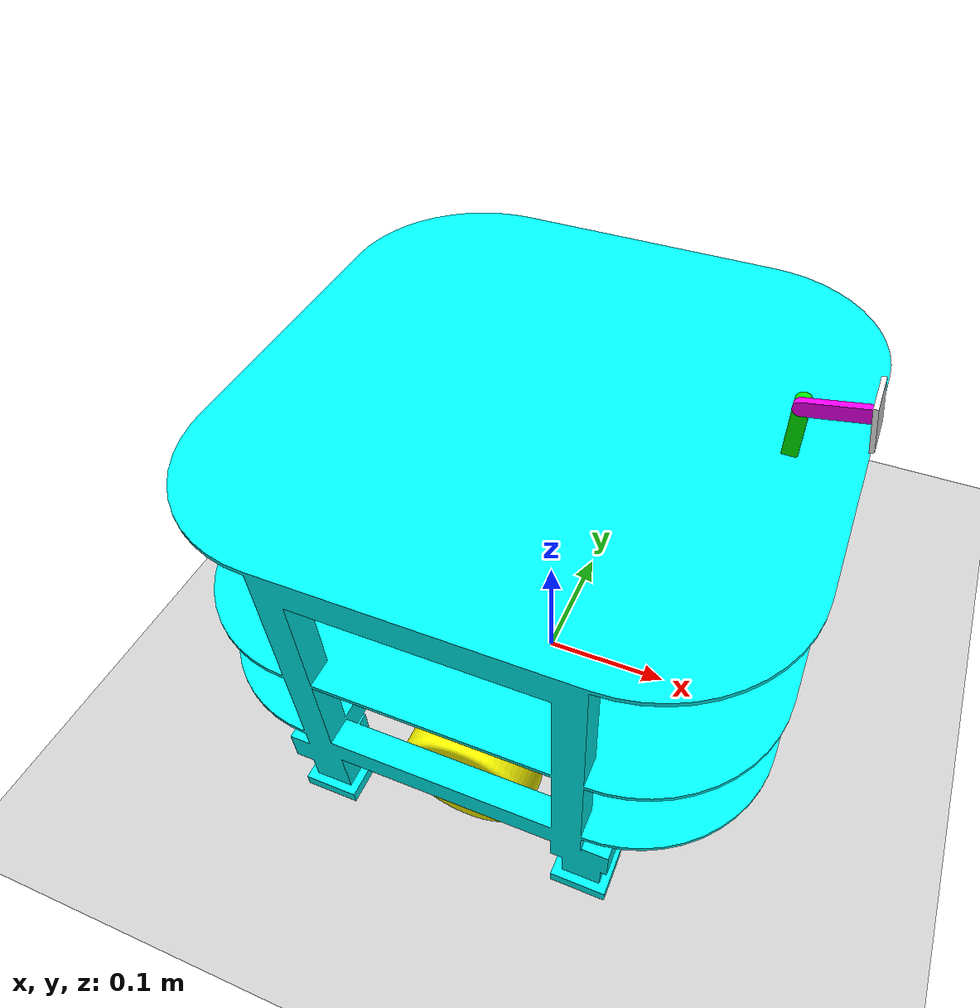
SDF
<?xml version="1.0"?>
<sdf version="1.6">
  <world name="default">

    <include>
      <uri>model://ground_plane</uri>
    </include>

    <include>
      <uri>model://sun</uri>
    </include>

    <scene>
      <shadows>false</shadows>
    </scene>

    <gui fullscreen='0'>
      <camera name='user_camera'>
        <pose frame=''>0.319654 -0.235002 9.29441 0 1.5138 0.009599</pose>
        <view_controller>orbit</view_controller>
        <projection_type>perspective</projection_type>
      </camera>
    </gui>

    <physics type="ode">
      <real_time_update_rate>1000.0</real_time_update_rate>
      <max_step_size>0.001</max_step_size>
      <real_time_factor>1</real_time_factor>
      <ode>
        <solver>
          <type>quick</type>
          <iters>150</iters>
          <precon_iters>0</precon_iters>
          <sor>1.400000</sor>
          <use_dynamic_moi_rescaling>1</use_dynamic_moi_rescaling>
        </solver>
        <constraints>
          <cfm>0.00001</cfm>
          <erp>0.2</erp>
          <contact_max_correcting_vel>2000.000000</contact_max_correcting_vel>
          <contact_surface_layer>0.01000</contact_surface_layer>
        </constraints>
      </ode>
    </physics>

    <include>
      <uri>model://toto2</uri>
    </include>

  </world>
</sdf>

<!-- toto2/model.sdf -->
<sdf version="1.5">
  <model name="toto2">
    <static>false</static>

    <!-- **************************** BASE_FOOTPRINT ********************************* -->

    <link name="base_footprint"/>

    <!-- **************************** BASE_LINK ********************************* -->

    <link name="base_link">
      <inertial>
        <pose>0 0.002513049838439521 0.1635865428520959 0 0 0</pose>
        <inertia>
          <ixx>0.380455</ixx>
          <iyy>0.569614</iyy>
          <izz>0.629258</izz>
          <ixy>0.0</ixy>
          <iyz>0.004146</iyz>
          <ixz>0.0</ixz>
        </inertia>
        <mass>7.0</mass>
      </inertial>

      <visual name="base_visual">
        <pose> 0 0 0 0 0 -1.57079633</pose>
        <geometry>
          <mesh>
            <uri>model://toto2/meshes/base_link.stl</uri>
            <scale>0.001 0.001 0.001</scale>
          </mesh>
        </geometry>
        <material>
          <ambient>0.0 1.0 1.0 1.0</ambient>
          <diffuse>0.0 1.0 1.0 1.0</diffuse>
          <specular>0.0 0.0 0.0 1.0</specular>
          <emissive>0.0 0.0 0.0 1.0</emissive>
        </material>
      </visual>

      <collision name="base_collision">
        <pose>0 0 0.001 0 0 -1.57079633</pose>
        <geometry>
          <mesh>
            <uri>model://toto2/meshes/base_link.stl</uri>
            <scale>0.001 0.001 0.001</scale>
          </mesh>
        </geometry>

        <surface>
          <!-- Define the friction properties -->
          <friction>
            <ode>
              <mu>0.001</mu>           <!-- Coefficient of friction -->
              <mu2>0.001</mu2>         <!-- Second coefficient of friction -->
              <fdir1>1 0 0</fdir1>   <!-- Direction of the first friction axis -->
              <slip1>0.0</slip1>     <!-- Slip along the first friction axis -->
              <slip2>0.0</slip2>     <!-- Slip along the second friction axis -->
            </ode>
          </friction>
        </surface>
      </collision>
    </link>

    <!-- **************************** LIDAR ********************************* -->

    <link name="lidar_1">
      <inertial>
        <pose>2.2068762530809514e-10 0.08500000036781817 -0.07958250099962488 0 0 0</pose>
        <inertia>
          <ixx>0.000336</ixx>
          <iyy>0.000279</iyy>
          <izz>0.000513</izz>
          <ixy>0.0</ixy>
          <iyz>-0.0</iyz>
          <ixz>-0.</ixz>
        </inertia>
        <mass>0.2</mass>
      </inertial>

      <visual name="lidar_visual">
        <pose>0.0 0.0 -0.0 0 0 -1.57079633</pose>
        <geometry>
          <mesh>
            <uri>model://toto2/meshes/lidar_1.stl</uri>
            <scale>0.001 0.001 0.001</scale>
          </mesh>
        </geometry>
        <material>
          <ambient>1.0 0.0 0.0 1.0</ambient>
          <diffuse>1.0 0.0 0.0 1.0</diffuse>
          <specular>0.0 0.0 0.0 1.0</specular>
          <emissive>0.0 0.0 0.0 1.0</emissive>
        </material>
      </visual>

      <collision name="lidar_collision">
        <pose>0.0 -0.0 -0.0 0 0 -1.57079633</pose>
        <geometry>
          <mesh>
            <uri>model://toto2/meshes/lidar_1.stl</uri>
            <scale>0.001 0.001 0.001</scale>
          </mesh>
        </geometry>
      </collision>

      <sensor name="hls_lfcd_lds" type="ray">
        <pose>0.0 -0.0 0.21 0 0 0</pose>
        <always_on>true</always_on>
        <visualize>false</visualize>
        <update_rate>5</update_rate>
        <ray>
          <scan>
            <horizontal>
              <samples>360</samples>
              <resolution>1.00000</resolution>
              <min_angle>0.000000</min_angle>
              <max_angle>6.280000</max_angle>
            </horizontal>
          </scan>
          <range>
            <min>0.250000</min>
            <max>8</max>
            <resolution>0.015000</resolution>
          </range>
          <noise>
            <type>gaussian</type>
            <mean>0.0</mean>
            <stddev>0.01</stddev>
          </noise>
        </ray>
        <plugin name="toto2_scan" filename="libgazebo_ros_ray_sensor.so">
          <ros>
            <remapping>~/out:=scan</remapping>
          </ros>
          <output_type>sensor_msgs/LaserScan</output_type>
          <frame_name>lidar_1</frame_name>
        </plugin>
      </sensor>
    </link>

    <!-- **************************** IMU ********************************* -->

    <link name="imu_link">
      <sensor name="toto2_imu" type="imu">
        <always_on>true</always_on>
        <update_rate>200</update_rate>
        <imu>
          <angular_velocity>
            <x>
              <noise type="gaussian">
                <mean>0.0</mean>
                <stddev>2e-4</stddev>
              </noise>
            </x>
            <y>
              <noise type="gaussian">
                <mean>0.0</mean>
                <stddev>2e-4</stddev>
              </noise>
            </y>
            <z>
              <noise type="gaussian">
                <mean>0.0</mean>
                <stddev>2e-4</stddev>
              </noise>
            </z>
          </angular_velocity>
          <linear_acceleration>
            <x>
              <noise type="gaussian">
                <mean>0.0</mean>
                <stddev>1.7e-2</stddev>
              </noise>
            </x>
            <y>
              <noise type="gaussian">
                <mean>0.0</mean>
                <stddev>1.7e-2</stddev>
              </noise>
            </y>
            <z>
              <noise type="gaussian">
                <mean>0.0</mean>
                <stddev>1.7e-2</stddev>
              </noise>
            </z>
          </linear_acceleration>
        </imu>
        <plugin name="toto2_imu" filename="libgazebo_ros_imu_sensor.so">
          <ros>
            <remapping>~/out:=imu</remapping>
          </ros>
        </plugin>
      </sensor>
    </link>

    <!-- **************************** CAMERA ********************************* -->

    <link name="camera_link1_1">
      <visual name="left_wheel_visual">
        <pose>0.0 0.0 0.0 0 0 -1.57079633</pose>
        <geometry>
          <mesh>
            <uri>model://toto2/meshes/camera_link1_1.stl</uri>
            <scale>0.001 0.001 0.001</scale>
          </mesh>
        </geometry>
        <material>
          <ambient>0.0 1.0 0.0 1.0</ambient>
          <diffuse>0.0 1.0 0.0 1.0</diffuse>
          <specular>0.0 0.0 0.0 1.0</specular>
          <emissive>0.0 0.0 0.0 1.0</emissive>
        </material>
      </visual>
    </link>

    <link name="camera_link2_1">
      <visual name="left_wheel_visual">
        <pose>0.0 0.0 0.0 0 0 -1.57079633</pose>
        <geometry>
          <mesh>
            <uri>model://toto2/meshes/camera_link2_1.stl</uri>
            <scale>0.001 0.001 0.001</scale>
          </mesh>
        </geometry>
        <material>
          <ambient>1.0 0.0 1.0 1.0</ambient>
          <diffuse>1.0 0.0 1.0 1.0</diffuse>
          <specular>0.0 0.0 0.0 1.0</specular>
          <emissive>0.0 0.0 0.0 1.0</emissive>
        </material>
      </visual>
    </link>

    <link name="camera_1">
      <visual name="left_wheel_visual">
        <pose>0.0 0.0 0.0 0 0 -1.57079633</pose>
        <geometry>
          <mesh>
            <uri>model://toto2/meshes/camera_1.stl</uri>
            <scale>0.001 0.001 0.001</scale>
          </mesh>
        </geometry>
        <material>
          <ambient>1.0 1.0 1.0 1.0</ambient>
          <diffuse>1.0 1.0 1.0 1.0</diffuse>
          <specular>0.0 0.0 0.0 1.0</specular>
          <emissive>0.0 0.0 0.0 1.0</emissive>
        </material>
      </visual>

      <sensor name="camera" type="camera">
        <pose>0.21 -0.0 0.3365 0 0 0</pose>
        <always_on>true</always_on>
        <visualize>false</visualize>
        <update_rate>30</update_rate>
        <camera name="picam">
          <horizontal_fov>1.085595</horizontal_fov>
          <image>
            <width>640</width>
            <height>480</height>
            <format>R8G8B8</format>
          </image>
          <clip>
            <near>0.03</near>
            <far>100</far>
          </clip>
          <noise>
            <type>gaussian</type>
            <mean>0.0</mean>
            <stddev>0.007</stddev>
          </noise>
        </camera>
        <plugin name="camera_driver" filename="libgazebo_ros_camera.so">
          <ros>
            <namespace>test_cam</namespace>
            <remapping>image_raw:=image_demo</remapping>
            <remapping>camera_info:=camera_info_demo</remapping>
          </ros>
          <frame_name>camera_1</frame_name>
        </plugin>
      </sensor>
    </link>

    <!-- **************************** RIGHT_WHEEL ********************************* -->

    <link name="right_wheel_1">
      <inertial>
        <pose>0.03541204935975309 -2.4243289958354717e-14 -9.020562075079397e-17 0 0 0</pose>
        <inertia>
          <ixx>0.002407</ixx>
          <iyy>0.001396</iyy>
          <izz>0.001396</izz>
          <ixy>0.0</ixy>
          <iyz>0.0</iyz>
          <ixz>0.0</ixz>
        </inertia>
        <mass>1</mass>
      </inertial>

      <visual name="right_wheel_visual">
        <pose>-0.0 0.0 -0.0 0 0 -1.57079633</pose>
        <geometry>
          <mesh>
            <uri>model://toto2/meshes/right_wheel_1.stl</uri>
            <scale>0.001 0.001 0.001</scale>
          </mesh>
        </geometry>
        <material>
          <ambient>1.0 1.0 0.0 1.0</ambient>
          <diffuse>1.0 1.0 0.0 1.0</diffuse>
          <specular>0.0 0.0 0.0 1.0</specular>
          <emissive>0.0 0.0 0.0 1.0</emissive>
        </material>
      </visual>

      <collision name="right_wheel_collision">
        <pose>-0.0 0.0 -0.0 0 0 -1.57079633</pose>
        <geometry>
          <mesh>
            <uri>model://toto2/meshes/right_wheel_1.stl</uri>
            <scale>0.001 0.001 0.001</scale>
          </mesh>
        </geometry>

        <surface>
          <!-- Define the friction properties -->
          <friction>
            <ode>
              <mu>10000</mu>           <!-- Coefficient of friction -->
              <mu2>1000000</mu2>         <!-- Second coefficient of friction -->
              <fdir1>1 0 0</fdir1>   <!-- Direction of the first friction axis -->
              <slip1>0.0</slip1>     <!-- Slip along the first friction axis -->
              <slip2>0.0</slip2>     <!-- Slip along the second friction axis -->
            </ode>
          </friction>
        </surface>
      </collision>
    </link>

    <!-- **************************** LEFT_WHEEL ********************************* -->

    <link name="left_wheel_1">
      <inertial>
        <pose>-0.03541204935975312 4.3327407697699233e-14 -6.245004513516506e-17 0 0 0</pose>
        <inertia>
          <ixx>0.002407</ixx>
          <iyy>0.001396</iyy>
          <izz>0.001396</izz>
          <ixy>0.0</ixy>
          <iyz>0.0</iyz>
          <ixz>0.0</ixz>
        </inertia>
        <mass>1</mass>
      </inertial>

      <visual name="left_wheel_visual">
        <pose>0.0 0.0 0.0 0 0 -1.57079633</pose>
        <geometry>
          <mesh>
            <uri>model://toto2/meshes/left_wheel_1.stl</uri>
            <scale>0.001 0.001 0.001</scale>
          </mesh>
        </geometry>
        <material>
          <ambient>1.0 1.0 0.0 1.0</ambient>
          <diffuse>1.0 1.0 0.0 1.0</diffuse>
          <specular>0.0 0.0 0.0 1.0</specular>
          <emissive>0.0 0.0 0.0 1.0</emissive>
        </material>
      </visual>

      <collision name="left_wheel_collision">
        <pose>0.0 0.0 0.0 0 0 -1.57079633</pose>
        <geometry>
          <mesh>
            <uri>model://toto2/meshes/left_wheel_1.stl</uri>
            <scale>0.001 0.001 0.001</scale>
          </mesh>
        </geometry>

        <surface>
          <!-- Define the friction properties -->
          <friction>
            <ode>
              <mu>10000</mu>           <!-- Coefficient of friction -->
              <mu2>1000000</mu2>         <!-- Second coefficient of friction -->
              <fdir1>1 0 0</fdir1>   <!-- Direction of the first friction axis -->
              <slip1>0.0</slip1>     <!-- Slip along the first friction axis -->
              <slip2>0.0</slip2>     <!-- Slip along the second friction axis -->
            </ode>
          </friction>
        </surface>
      </collision>
    </link>

    <!-- **************************** JOINTS ********************************* -->

    <joint name="left_wheel_joint" type="revolute">
      <pose>0.0 0.1195 0.0499 0 0 -1.57079633</pose>
      <parent>base_link</parent>
      <child>left_wheel_1</child>
      <axis>
        <xyz>-1.0 0.0 0.0</xyz>
      </axis>
    </joint>

    <joint name="right_wheel_joint" type="revolute">
      <pose>0.0 -0.1195 0.0499 0 0 -1.57079633</pose>
      <parent>base_link</parent>
      <child>right_wheel_1</child>
      <axis>
        <xyz>-1.0 0.0 0.0</xyz>
      </axis>
    </joint>

    <joint name="lidar_joint" type="fixed">
      <parent>base_link</parent>
      <child>lidar_1</child>
      <pose>0.1 0.0 0.17 0 0 0</pose>
    </joint>

    <joint name="base" type="fixed">
      <parent>base_footprint</parent>
      <child>base_link</child>
      <pose>0.0 0.0 0.1 0 0 0</pose>
      <axis>
        <xyz>0 0 1</xyz>
      </axis>
    </joint>

    <joint name="imu_joint" type="fixed">
      <parent>base_link</parent>
      <child>imu_link</child>
      <pose>0.0 0.0 0.17 0 0 0</pose>
      <axis>
        <xyz>0 0 1</xyz>
      </axis>
    </joint>

    <joint name="camera_joint_1" type="fixed">
      <parent>base_link</parent>
      <child>camera_link1_1</child>
      <pose>0.16 0.0 0.2795 0 0 0</pose>
    </joint>

    <joint name="camera_joint_2" type="fixed">
      <parent>camera_link1_1</parent>
      <child>camera_link2_1</child>
      <pose>0.03 0.0 0.042 0 0 0</pose>
    </joint>

    <joint name="camera_joint" type="fixed">
      <parent>camera_link2_1</parent>
      <child>camera_1</child>
      <pose>0.020 0.01 0.015 0 0 0</pose>
    </joint>

    <!-- *********************** WHEEL ODOMETRY ***************************    -->
    <plugin name="toto2_diff_drive" filename="libgazebo_ros_diff_drive.so">

      <update_rate>30</update_rate>

      <!-- wheels -->
      <left_joint>left_wheel_joint</left_joint>
      <right_joint>right_wheel_joint</right_joint>

      <!-- kinematics -->
      <wheel_separation>0.315</wheel_separation>
      <wheel_diameter>0.1</wheel_diameter>

      <!-- limits -->
      <max_wheel_torque>20</max_wheel_torque>
      <max_wheel_acceleration>1.0</max_wheel_acceleration>

      <!-- Receive velocity commands on this ROS topic -->
      <command_topic>cmd_vel</command_topic>

      <!-- output -->
      <!-- When false, publish no wheel odometry data to a ROS topic -->
      <publish_odom>true</publish_odom>

      <!-- When true, publish coordinate transform from odom to base_footprint -->
      <!-- I usually use the robot_localization package to publish this transform -->
      <publish_odom_tf>true</publish_odom_tf>

      <!-- When true, publish coordinate transform from base_link to the wheels -->
      <!-- The robot_state_publisher package is often used to publish this transform -->
      <publish_wheel_tf>false</publish_wheel_tf>

      <odometry_topic>odom</odometry_topic>
      <odometry_frame>odom</odometry_frame>
      <robot_base_frame>base_footprint</robot_base_frame>

      <!-- Odometry source, 0 for ENCODER, 1 for WORLD, defaults to WORLD -->
      <odometry_source>0</odometry_source>

      <!-- Change the ROS topic we will publish the odometry data to -->

    </plugin>

    <!-- *********************** JOINT STATE PUBLISHER *********************   -->

    <plugin name="toto_joint_state" filename="libgazebo_ros_joint_state_publisher.so">
      <ros>
        <remapping>~/out:=joint_states</remapping>
      </ros>
      <update_rate>30</update_rate>
      <joint_name>left_wheel_joint</joint_name>
      <joint_name>right_wheel_joint</joint_name>
    </plugin>

  </model>
</sdf>
